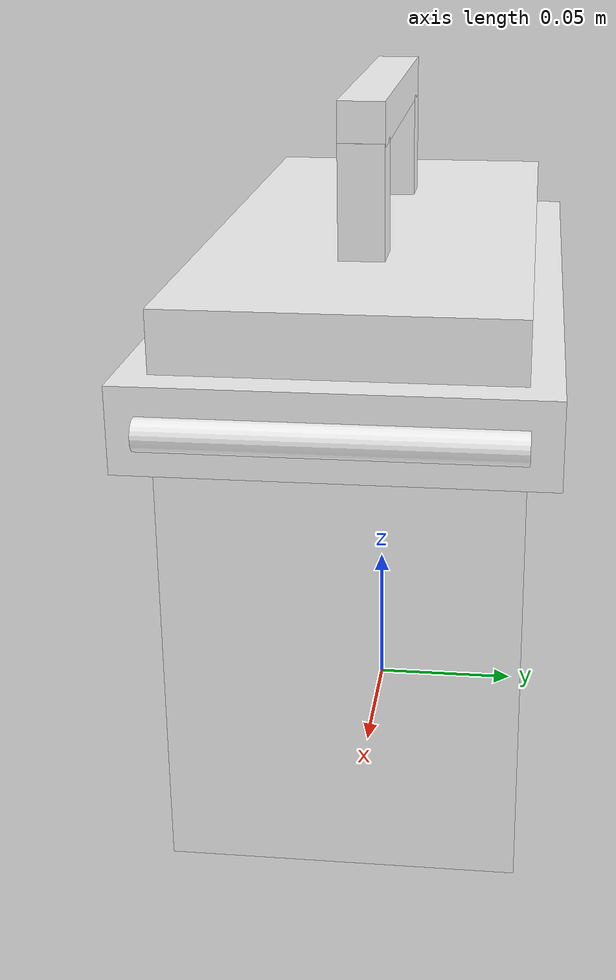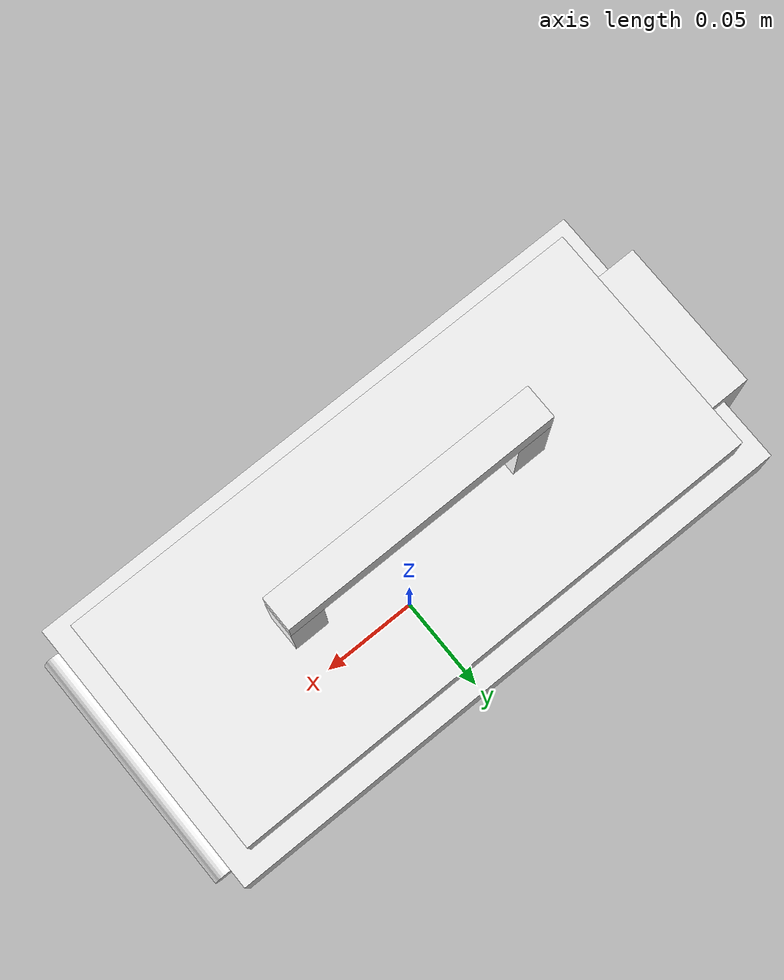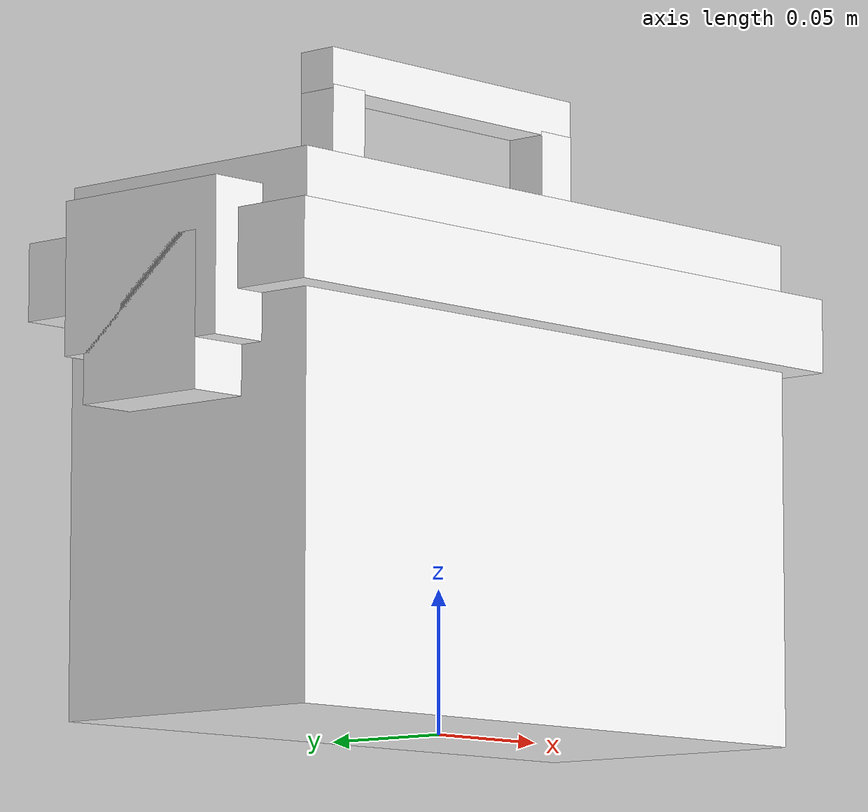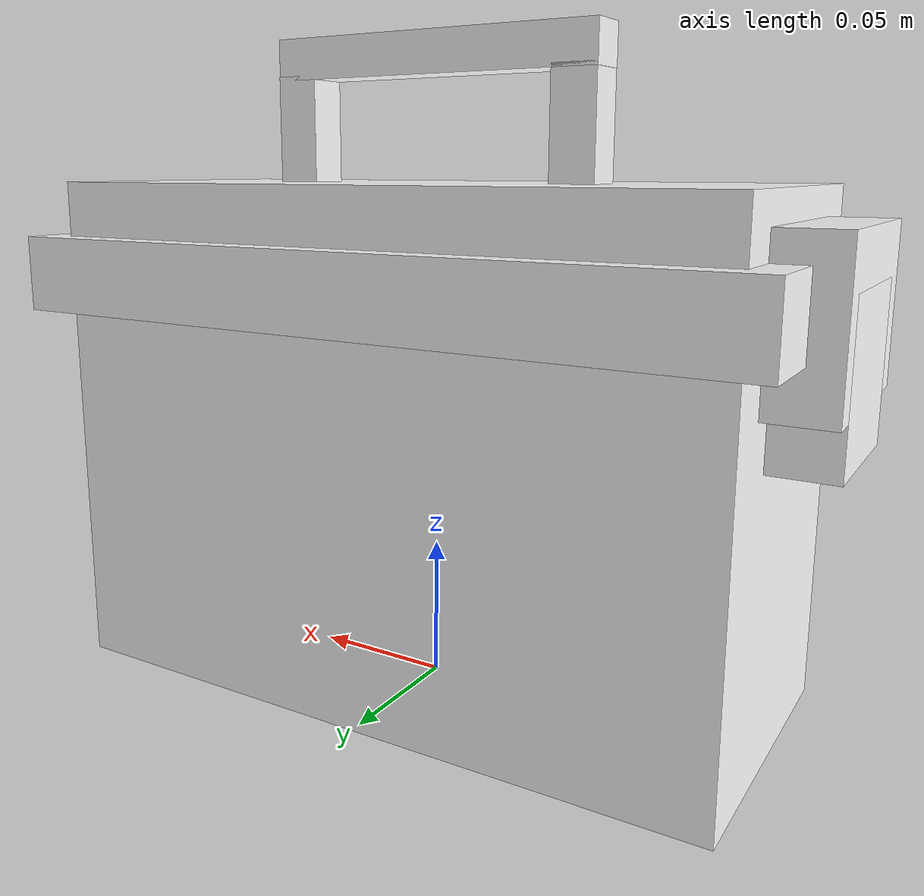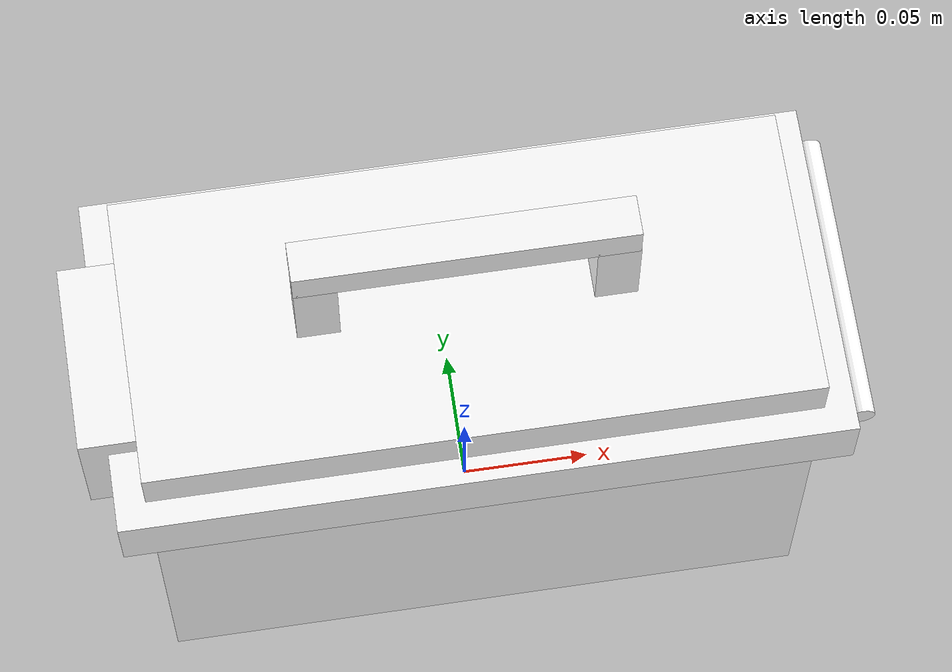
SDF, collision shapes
<?xml version='1.0' ?>
<sdf version="1.6">
  <model name="large_grey_box">
    <static>false</static>
    <link name="link">
      <inertial>
        <pose>0 0 0.11505 0 0 0</pose>
        <mass>15</mass>
        <inertia>
          <ixx>0.08752899</ixx>
          <ixy>0.0</ixy>
          <ixz>0.0</ixz>
          <iyy>0.16929059</iyy>
          <iyz>0.0</iyz>
          <izz>0.12259114</izz>
        </inertia>
      </inertial>
      <visual name="visual">
        <geometry>
          <mesh>
            <uri>meshes/greyboxlarge.dae</uri>
          </mesh>
        </geometry>
        <material>
          <diffuse>1.0 1.0 1.0</diffuse>
          <specular>1.0 1.0 1.0</specular>
          <pbr>
            <metal>
              <albedo_map>materials/textures/GreyBoxLarge_Albedo.jpg</albedo_map>
              <normal_map>materials/textures/GreyBoxLarge_Normal.jpg</normal_map>
              <roughness_map>materials/textures/GreyBoxLarge_Roughness.png</roughness_map>
              <metalness_map>materials/textures/GreyBoxLarge_Metalness.png</metalness_map>
            </metal>
          </pbr>
        </material>
      </visual>

      <collision name="Cylinder001">
        <pose>0.137797 0.0 0.148378 1.5708 0.0 0.0</pose>
        <geometry>
          <cylinder>
            <length>0.11</length>
            <radius>0.004925</radius>
          </cylinder>
        </geometry>
      </collision>
      <collision name="Box007">
        <pose>-0.129971 0.000537722 0.127395 1.5708 0.0 -1.5708</pose>
        <geometry>
          <box>
            <size>0.0517868 0.0520903 0.0287742</size>
          </box>
        </geometry>
      </collision>
      <collision name="Box006">
        <pose>-0.129971 0.000537721 0.144393 1.5708 0.0 -1.5708</pose>
        <geometry>
          <box>
            <size>0.0699822 0.0520903 0.0287742</size>
          </box>
        </geometry>
      </collision>
      <collision name="Box005">
        <pose>0.054 0.0 0.193553 0.0 0.0 0.0</pose>
        <geometry>
          <box>
            <size>0.0156478 0.0150169 0.0474481</size>
          </box>
        </geometry>
      </collision>
      <collision name="Box004">
        <pose>-0.0536493 0.0 0.193553 0.0 0.0 0.0</pose>
        <geometry>
          <box>
            <size>0.0156478 0.0150169 0.0474481</size>
          </box>
        </geometry>
      </collision>
      <collision name="Box003">
        <pose>0.0 0.0 0.223048 0.0 0.0 0.0</pose>
        <geometry>
          <box>
            <size>0.123192 0.0150169 0.014206</size>
          </box>
        </geometry>
      </collision>
      <collision name="Box002">
        <pose>0.0 0.0 0.147692 0.0 0.0 0.0</pose>
        <geometry>
          <box>
            <size>0.268411 0.128372 0.0266612</size>
          </box>
        </geometry>
      </collision>
      <collision name="Box001">
        <pose>0.0 0.0 0.0901828 0.0 0.0 0.0</pose>
        <geometry>
          <box>
            <size>0.246019 0.108633 0.180366</size>
          </box>
        </geometry>
      </collision>
    </link>
  </model>
</sdf>
